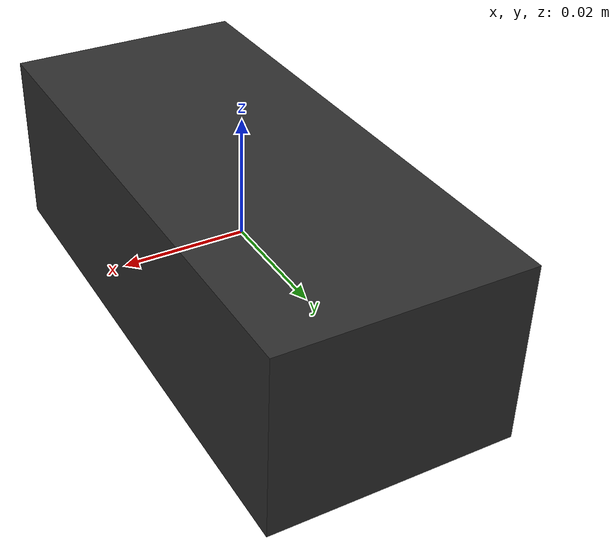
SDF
<?xml version="1.0"?>
<!--
Copyright (C) 2026 Intel Corporation
SPDX-License-Identifier: Apache-2.0
-->
<sdf version="1.9">
  <model name="generic_rgbd_camera">
    <link name="rgbd_camera_link">
      <inertial>
        <mass>0.05</mass>
        <inertia>
          <ixx>0.0001</ixx>
          <iyy>0.0001</iyy>
          <izz>0.0001</izz>
        </inertia>
      </inertial>
      <visual name="camera_visual">
        <geometry>
          <box>
            <size>0.04 0.09 0.03</size>
          </box>
        </geometry>
        <material>
          <ambient>0.12 0.12 0.12 1</ambient>
          <diffuse>0.18 0.18 0.18 1</diffuse>
        </material>
      </visual>
      <sensor name="rgbd" type="rgbd_camera">
        <always_on>true</always_on>
        <update_rate>15</update_rate>
        <visualize>false</visualize>
        <topic>/rgbd_camera</topic>
        <gz_frame_id>rgbd_camera_link</gz_frame_id>
        <camera>
          <optical_frame_id>camera_rgb_optical_frame</optical_frame_id>
          <horizontal_fov>1.047</horizontal_fov>
          <image>
            <width>320</width>
            <height>240</height>
            <format>R8G8B8</format>
          </image>
          <clip>
            <near>0.1</near>
            <far>10.0</far>
          </clip>
          <noise>
            <type>gaussian</type>
            <mean>0.0</mean>
            <stddev>0.002</stddev>
          </noise>
        </camera>
      </sensor>
    </link>
  </model>
</sdf>
